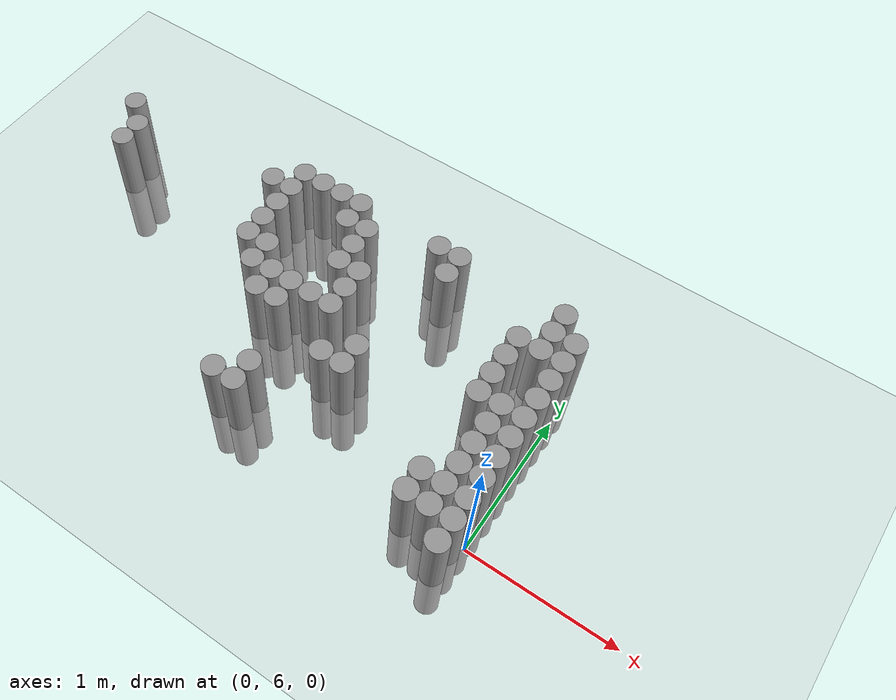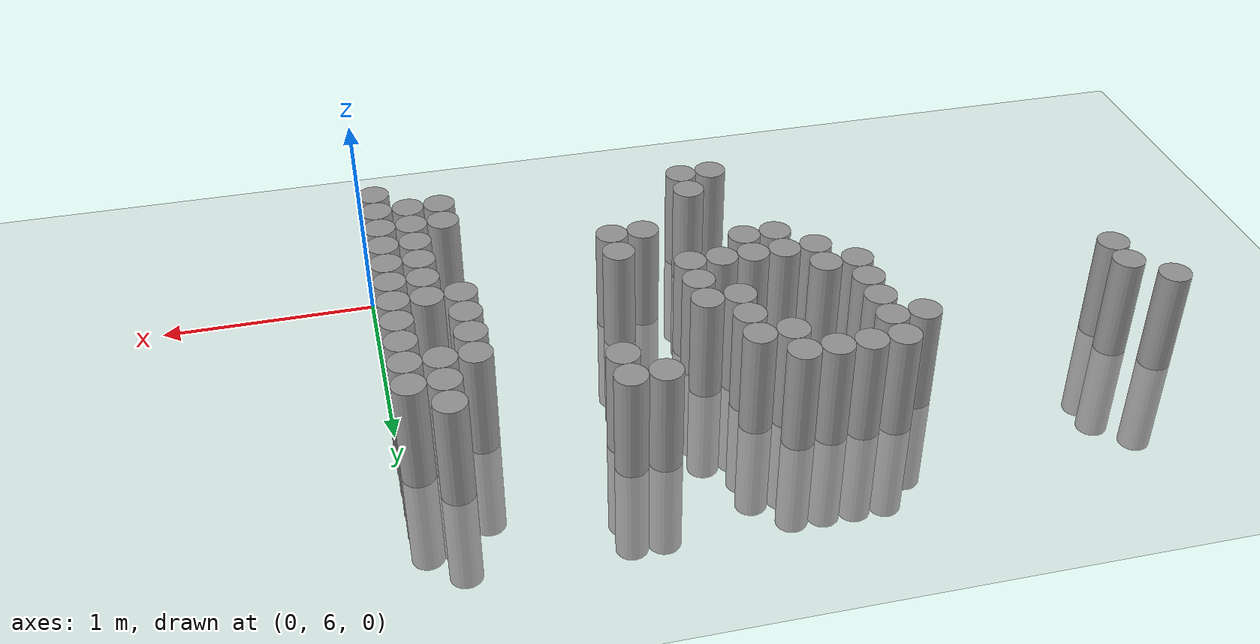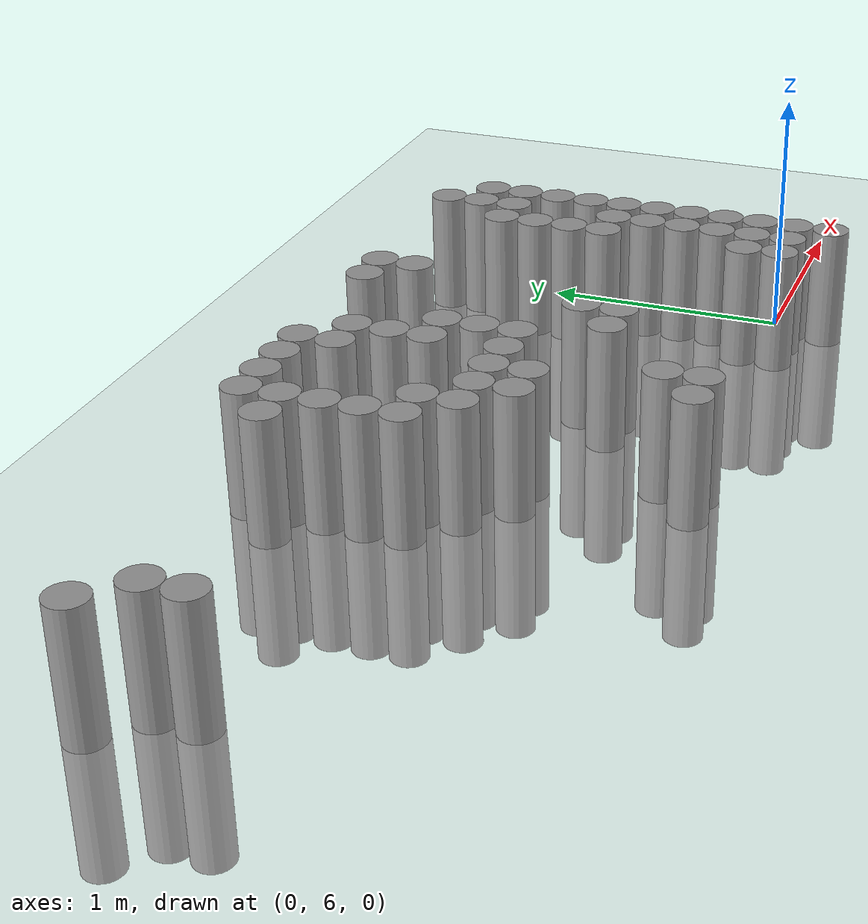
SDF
<sdf version="1.6">
 <world name="default">
  <model name="ground_plane">
   <static>1</static>
   <link name="link">
    <collision name="collision">
     <geometry><plane><normal>0 0 1</normal><size>100 100</size></plane></geometry>
     <surface><friction><ode><mu>100</mu><mu2>50</mu2></ode></friction></surface>
    </collision>
    <visual name="visual">
     <cast_shadows>0</cast_shadows>
     <geometry><plane><normal>0 0 1</normal><size>100 100</size></plane></geometry>
     <material>
      <script><uri>file://media/materials/scripts/gazebo.material</uri><name>Gazebo/Grey</name></script>
     </material>
    </visual>
   </link>
  </model>
  <model name="unit_cylinder_168">
   <pose>-3.525000 7.275000 0.000000 0.000000 0.000000 0.000000</pose>
   <link name="link">
    <inertial>
     <mass>1</mass>
     <inertia><ixx>0.145833</ixx><ixy>0</ixy><ixz>0</ixz><iyy>0.145833</iyy><iyz>0</iyz><izz>0.125</izz></inertia>
    </inertial>
    <collision name="collision">
     <geometry><cylinder><radius>0.075000</radius><length>1</length></cylinder></geometry>
    </collision>
    <visual name="visual">
     <geometry><cylinder><radius>0.075000</radius><length>1</length></cylinder></geometry>
     <material>
      <script><name>Gazebo/Grey</name><uri>file://media/materials/scripts/gazebo.material</uri></script>
     </material>
    </visual>
   </link>
  </model>
  <model name="unit_cylinder_174">
   <pose>-3.375000 6.975000 0.000000 0.000000 0.000000 0.000000</pose>
   <link name="link">
    <inertial>
     <mass>1</mass>
     <inertia><ixx>0.145833</ixx><ixy>0</ixy><ixz>0</ixz><iyy>0.145833</iyy><iyz>0</iyz><izz>0.125</izz></inertia>
    </inertial>
    <collision name="collision">
     <geometry><cylinder><radius>0.075000</radius><length>1</length></cylinder></geometry>
    </collision>
    <visual name="visual">
     <geometry><cylinder><radius>0.075000</radius><length>1</length></cylinder></geometry>
     <material>
      <script><name>Gazebo/Grey</name><uri>file://media/materials/scripts/gazebo.material</uri></script>
     </material>
    </visual>
   </link>
  </model>
  <model name="unit_cylinder_175">
   <pose>-3.375000 7.125000 0.000000 0.000000 0.000000 0.000000</pose>
   <link name="link">
    <inertial>
     <mass>1</mass>
     <inertia><ixx>0.145833</ixx><ixy>0</ixy><ixz>0</ixz><iyy>0.145833</iyy><iyz>0</iyz><izz>0.125</izz></inertia>
    </inertial>
    <collision name="collision">
     <geometry><cylinder><radius>0.075000</radius><length>1</length></cylinder></geometry>
    </collision>
    <visual name="visual">
     <geometry><cylinder><radius>0.075000</radius><length>1</length></cylinder></geometry>
     <material>
      <script><name>Gazebo/Grey</name><uri>file://media/materials/scripts/gazebo.material</uri></script>
     </material>
    </visual>
   </link>
  </model>
  <model name="unit_cylinder_182">
   <pose>-2.325000 7.275000 0.000000 0.000000 0.000000 0.000000</pose>
   <link name="link">
    <inertial>
     <mass>1</mass>
     <inertia><ixx>0.145833</ixx><ixy>0</ixy><ixz>0</ixz><iyy>0.145833</iyy><iyz>0</iyz><izz>0.125</izz></inertia>
    </inertial>
    <collision name="collision">
     <geometry><cylinder><radius>0.075000</radius><length>1</length></cylinder></geometry>
    </collision>
    <visual name="visual">
     <geometry><cylinder><radius>0.075000</radius><length>1</length></cylinder></geometry>
     <material>
      <script><name>Gazebo/Grey</name><uri>file://media/materials/scripts/gazebo.material</uri></script>
     </material>
    </visual>
   </link>
  </model>
  <model name="unit_cylinder_184">
   <pose>-2.175000 6.825000 0.000000 0.000000 0.000000 0.000000</pose>
   <link name="link">
    <inertial>
     <mass>1</mass>
     <inertia><ixx>0.145833</ixx><ixy>0</ixy><ixz>0</ixz><iyy>0.145833</iyy><iyz>0</iyz><izz>0.125</izz></inertia>
    </inertial>
    <collision name="collision">
     <geometry><cylinder><radius>0.075000</radius><length>1</length></cylinder></geometry>
    </collision>
    <visual name="visual">
     <geometry><cylinder><radius>0.075000</radius><length>1</length></cylinder></geometry>
     <material>
      <script><name>Gazebo/Grey</name><uri>file://media/materials/scripts/gazebo.material</uri></script>
     </material>
    </visual>
   </link>
  </model>
  <model name="unit_cylinder_185">
   <pose>-2.175000 6.975000 0.000000 0.000000 0.000000 0.000000</pose>
   <link name="link">
    <inertial>
     <mass>1</mass>
     <inertia><ixx>0.145833</ixx><ixy>0</ixy><ixz>0</ixz><iyy>0.145833</iyy><iyz>0</iyz><izz>0.125</izz></inertia>
    </inertial>
    <collision name="collision">
     <geometry><cylinder><radius>0.075000</radius><length>1</length></cylinder></geometry>
    </collision>
    <visual name="visual">
     <geometry><cylinder><radius>0.075000</radius><length>1</length></cylinder></geometry>
     <material>
      <script><name>Gazebo/Grey</name><uri>file://media/materials/scripts/gazebo.material</uri></script>
     </material>
    </visual>
   </link>
  </model>
  <model name="unit_cylinder_186">
   <pose>-2.175000 7.125000 0.000000 0.000000 0.000000 0.000000</pose>
   <link name="link">
    <inertial>
     <mass>1</mass>
     <inertia><ixx>0.145833</ixx><ixy>0</ixy><ixz>0</ixz><iyy>0.145833</iyy><iyz>0</iyz><izz>0.125</izz></inertia>
    </inertial>
    <collision name="collision">
     <geometry><cylinder><radius>0.075000</radius><length>1</length></cylinder></geometry>
    </collision>
    <visual name="visual">
     <geometry><cylinder><radius>0.075000</radius><length>1</length></cylinder></geometry>
     <material>
      <script><name>Gazebo/Grey</name><uri>file://media/materials/scripts/gazebo.material</uri></script>
     </material>
    </visual>
   </link>
  </model>
  <model name="unit_cylinder_187">
   <pose>-2.175000 7.275000 0.000000 0.000000 0.000000 0.000000</pose>
   <link name="link">
    <inertial>
     <mass>1</mass>
     <inertia><ixx>0.145833</ixx><ixy>0</ixy><ixz>0</ixz><iyy>0.145833</iyy><iyz>0</iyz><izz>0.125</izz></inertia>
    </inertial>
    <collision name="collision">
     <geometry><cylinder><radius>0.075000</radius><length>1</length></cylinder></geometry>
    </collision>
    <visual name="visual">
     <geometry><cylinder><radius>0.075000</radius><length>1</length></cylinder></geometry>
     <material>
      <script><name>Gazebo/Grey</name><uri>file://media/materials/scripts/gazebo.material</uri></script>
     </material>
    </visual>
   </link>
  </model>
  <model name="unit_cylinder_188">
   <pose>-2.175000 7.425000 0.000000 0.000000 0.000000 0.000000</pose>
   <link name="link">
    <inertial>
     <mass>1</mass>
     <inertia><ixx>0.145833</ixx><ixy>0</ixy><ixz>0</ixz><iyy>0.145833</iyy><iyz>0</iyz><izz>0.125</izz></inertia>
    </inertial>
    <collision name="collision">
     <geometry><cylinder><radius>0.075000</radius><length>1</length></cylinder></geometry>
    </collision>
    <visual name="visual">
     <geometry><cylinder><radius>0.075000</radius><length>1</length></cylinder></geometry>
     <material>
      <script><name>Gazebo/Grey</name><uri>file://media/materials/scripts/gazebo.material</uri></script>
     </material>
    </visual>
   </link>
  </model>
  <model name="unit_cylinder_193">
   <pose>-2.025000 6.675000 0.000000 0.000000 0.000000 0.000000</pose>
   <link name="link">
    <inertial>
     <mass>1</mass>
     <inertia><ixx>0.145833</ixx><ixy>0</ixy><ixz>0</ixz><iyy>0.145833</iyy><iyz>0</iyz><izz>0.125</izz></inertia>
    </inertial>
    <collision name="collision">
     <geometry><cylinder><radius>0.075000</radius><length>1</length></cylinder></geometry>
    </collision>
    <visual name="visual">
     <geometry><cylinder><radius>0.075000</radius><length>1</length></cylinder></geometry>
     <material>
      <script><name>Gazebo/Grey</name><uri>file://media/materials/scripts/gazebo.material</uri></script>
     </material>
    </visual>
   </link>
  </model>
  <model name="unit_cylinder_194">
   <pose>-2.025000 6.825000 0.000000 0.000000 0.000000 0.000000</pose>
   <link name="link">
    <inertial>
     <mass>1</mass>
     <inertia><ixx>0.145833</ixx><ixy>0</ixy><ixz>0</ixz><iyy>0.145833</iyy><iyz>0</iyz><izz>0.125</izz></inertia>
    </inertial>
    <collision name="collision">
     <geometry><cylinder><radius>0.075000</radius><length>1</length></cylinder></geometry>
    </collision>
    <visual name="visual">
     <geometry><cylinder><radius>0.075000</radius><length>1</length></cylinder></geometry>
     <material>
      <script><name>Gazebo/Grey</name><uri>file://media/materials/scripts/gazebo.material</uri></script>
     </material>
    </visual>
   </link>
  </model>
  <model name="unit_cylinder_195">
   <pose>-2.025000 7.425000 0.000000 0.000000 0.000000 0.000000</pose>
   <link name="link">
    <inertial>
     <mass>1</mass>
     <inertia><ixx>0.145833</ixx><ixy>0</ixy><ixz>0</ixz><iyy>0.145833</iyy><iyz>0</iyz><izz>0.125</izz></inertia>
    </inertial>
    <collision name="collision">
     <geometry><cylinder><radius>0.075000</radius><length>1</length></cylinder></geometry>
    </collision>
    <visual name="visual">
     <geometry><cylinder><radius>0.075000</radius><length>1</length></cylinder></geometry>
     <material>
      <script><name>Gazebo/Grey</name><uri>file://media/materials/scripts/gazebo.material</uri></script>
     </material>
    </visual>
   </link>
  </model>
  <model name="unit_cylinder_198">
   <pose>-1.875000 6.525000 0.000000 0.000000 0.000000 0.000000</pose>
   <link name="link">
    <inertial>
     <mass>1</mass>
     <inertia><ixx>0.145833</ixx><ixy>0</ixy><ixz>0</ixz><iyy>0.145833</iyy><iyz>0</iyz><izz>0.125</izz></inertia>
    </inertial>
    <collision name="collision">
     <geometry><cylinder><radius>0.075000</radius><length>1</length></cylinder></geometry>
    </collision>
    <visual name="visual">
     <geometry><cylinder><radius>0.075000</radius><length>1</length></cylinder></geometry>
     <material>
      <script><name>Gazebo/Grey</name><uri>file://media/materials/scripts/gazebo.material</uri></script>
     </material>
    </visual>
   </link>
  </model>
  <model name="unit_cylinder_199">
   <pose>-1.875000 6.675000 0.000000 0.000000 0.000000 0.000000</pose>
   <link name="link">
    <inertial>
     <mass>1</mass>
     <inertia><ixx>0.145833</ixx><ixy>0</ixy><ixz>0</ixz><iyy>0.145833</iyy><iyz>0</iyz><izz>0.125</izz></inertia>
    </inertial>
    <collision name="collision">
     <geometry><cylinder><radius>0.075000</radius><length>1</length></cylinder></geometry>
    </collision>
    <visual name="visual">
     <geometry><cylinder><radius>0.075000</radius><length>1</length></cylinder></geometry>
     <material>
      <script><name>Gazebo/Grey</name><uri>file://media/materials/scripts/gazebo.material</uri></script>
     </material>
    </visual>
   </link>
  </model>
  <model name="unit_cylinder_200">
   <pose>-1.875000 7.425000 0.000000 0.000000 0.000000 0.000000</pose>
   <link name="link">
    <inertial>
     <mass>1</mass>
     <inertia><ixx>0.145833</ixx><ixy>0</ixy><ixz>0</ixz><iyy>0.145833</iyy><iyz>0</iyz><izz>0.125</izz></inertia>
    </inertial>
    <collision name="collision">
     <geometry><cylinder><radius>0.075000</radius><length>1</length></cylinder></geometry>
    </collision>
    <visual name="visual">
     <geometry><cylinder><radius>0.075000</radius><length>1</length></cylinder></geometry>
     <material>
      <script><name>Gazebo/Grey</name><uri>file://media/materials/scripts/gazebo.material</uri></script>
     </material>
    </visual>
   </link>
  </model>
  <model name="unit_cylinder_204">
   <pose>-1.725000 5.925000 0.000000 0.000000 0.000000 0.000000</pose>
   <link name="link">
    <inertial>
     <mass>1</mass>
     <inertia><ixx>0.145833</ixx><ixy>0</ixy><ixz>0</ixz><iyy>0.145833</iyy><iyz>0</iyz><izz>0.125</izz></inertia>
    </inertial>
    <collision name="collision">
     <geometry><cylinder><radius>0.075000</radius><length>1</length></cylinder></geometry>
    </collision>
    <visual name="visual">
     <geometry><cylinder><radius>0.075000</radius><length>1</length></cylinder></geometry>
     <material>
      <script><name>Gazebo/Grey</name><uri>file://media/materials/scripts/gazebo.material</uri></script>
     </material>
    </visual>
   </link>
  </model>
  <model name="unit_cylinder_205">
   <pose>-1.725000 6.525000 0.000000 0.000000 0.000000 0.000000</pose>
   <link name="link">
    <inertial>
     <mass>1</mass>
     <inertia><ixx>0.145833</ixx><ixy>0</ixy><ixz>0</ixz><iyy>0.145833</iyy><iyz>0</iyz><izz>0.125</izz></inertia>
    </inertial>
    <collision name="collision">
     <geometry><cylinder><radius>0.075000</radius><length>1</length></cylinder></geometry>
    </collision>
    <visual name="visual">
     <geometry><cylinder><radius>0.075000</radius><length>1</length></cylinder></geometry>
     <material>
      <script><name>Gazebo/Grey</name><uri>file://media/materials/scripts/gazebo.material</uri></script>
     </material>
    </visual>
   </link>
  </model>
  <model name="unit_cylinder_206">
   <pose>-1.725000 6.675000 0.000000 0.000000 0.000000 0.000000</pose>
   <link name="link">
    <inertial>
     <mass>1</mass>
     <inertia><ixx>0.145833</ixx><ixy>0</ixy><ixz>0</ixz><iyy>0.145833</iyy><iyz>0</iyz><izz>0.125</izz></inertia>
    </inertial>
    <collision name="collision">
     <geometry><cylinder><radius>0.075000</radius><length>1</length></cylinder></geometry>
    </collision>
    <visual name="visual">
     <geometry><cylinder><radius>0.075000</radius><length>1</length></cylinder></geometry>
     <material>
      <script><name>Gazebo/Grey</name><uri>file://media/materials/scripts/gazebo.material</uri></script>
     </material>
    </visual>
   </link>
  </model>
  <model name="unit_cylinder_207">
   <pose>-1.725000 7.275000 0.000000 0.000000 0.000000 0.000000</pose>
   <link name="link">
    <inertial>
     <mass>1</mass>
     <inertia><ixx>0.145833</ixx><ixy>0</ixy><ixz>0</ixz><iyy>0.145833</iyy><iyz>0</iyz><izz>0.125</izz></inertia>
    </inertial>
    <collision name="collision">
     <geometry><cylinder><radius>0.075000</radius><length>1</length></cylinder></geometry>
    </collision>
    <visual name="visual">
     <geometry><cylinder><radius>0.075000</radius><length>1</length></cylinder></geometry>
     <material>
      <script><name>Gazebo/Grey</name><uri>file://media/materials/scripts/gazebo.material</uri></script>
     </material>
    </visual>
   </link>
  </model>
  <model name="unit_cylinder_208">
   <pose>-1.725000 7.425000 0.000000 0.000000 0.000000 0.000000</pose>
   <link name="link">
    <inertial>
     <mass>1</mass>
     <inertia><ixx>0.145833</ixx><ixy>0</ixy><ixz>0</ixz><iyy>0.145833</iyy><iyz>0</iyz><izz>0.125</izz></inertia>
    </inertial>
    <collision name="collision">
     <geometry><cylinder><radius>0.075000</radius><length>1</length></cylinder></geometry>
    </collision>
    <visual name="visual">
     <geometry><cylinder><radius>0.075000</radius><length>1</length></cylinder></geometry>
     <material>
      <script><name>Gazebo/Grey</name><uri>file://media/materials/scripts/gazebo.material</uri></script>
     </material>
    </visual>
   </link>
  </model>
  <model name="unit_cylinder_215">
   <pose>-1.575000 5.925000 0.000000 0.000000 0.000000 0.000000</pose>
   <link name="link">
    <inertial>
     <mass>1</mass>
     <inertia><ixx>0.145833</ixx><ixy>0</ixy><ixz>0</ixz><iyy>0.145833</iyy><iyz>0</iyz><izz>0.125</izz></inertia>
    </inertial>
    <collision name="collision">
     <geometry><cylinder><radius>0.075000</radius><length>1</length></cylinder></geometry>
    </collision>
    <visual name="visual">
     <geometry><cylinder><radius>0.075000</radius><length>1</length></cylinder></geometry>
     <material>
      <script><name>Gazebo/Grey</name><uri>file://media/materials/scripts/gazebo.material</uri></script>
     </material>
    </visual>
   </link>
  </model>
  <model name="unit_cylinder_216">
   <pose>-1.575000 6.075000 0.000000 0.000000 0.000000 0.000000</pose>
   <link name="link">
    <inertial>
     <mass>1</mass>
     <inertia><ixx>0.145833</ixx><ixy>0</ixy><ixz>0</ixz><iyy>0.145833</iyy><iyz>0</iyz><izz>0.125</izz></inertia>
    </inertial>
    <collision name="collision">
     <geometry><cylinder><radius>0.075000</radius><length>1</length></cylinder></geometry>
    </collision>
    <visual name="visual">
     <geometry><cylinder><radius>0.075000</radius><length>1</length></cylinder></geometry>
     <material>
      <script><name>Gazebo/Grey</name><uri>file://media/materials/scripts/gazebo.material</uri></script>
     </material>
    </visual>
   </link>
  </model>
  <model name="unit_cylinder_217">
   <pose>-1.575000 6.675000 0.000000 0.000000 0.000000 0.000000</pose>
   <link name="link">
    <inertial>
     <mass>1</mass>
     <inertia><ixx>0.145833</ixx><ixy>0</ixy><ixz>0</ixz><iyy>0.145833</iyy><iyz>0</iyz><izz>0.125</izz></inertia>
    </inertial>
    <collision name="collision">
     <geometry><cylinder><radius>0.075000</radius><length>1</length></cylinder></geometry>
    </collision>
    <visual name="visual">
     <geometry><cylinder><radius>0.075000</radius><length>1</length></cylinder></geometry>
     <material>
      <script><name>Gazebo/Grey</name><uri>file://media/materials/scripts/gazebo.material</uri></script>
     </material>
    </visual>
   </link>
  </model>
  <model name="unit_cylinder_218">
   <pose>-1.575000 6.975000 0.000000 0.000000 0.000000 0.000000</pose>
   <link name="link">
    <inertial>
     <mass>1</mass>
     <inertia><ixx>0.145833</ixx><ixy>0</ixy><ixz>0</ixz><iyy>0.145833</iyy><iyz>0</iyz><izz>0.125</izz></inertia>
    </inertial>
    <collision name="collision">
     <geometry><cylinder><radius>0.075000</radius><length>1</length></cylinder></geometry>
    </collision>
    <visual name="visual">
     <geometry><cylinder><radius>0.075000</radius><length>1</length></cylinder></geometry>
     <material>
      <script><name>Gazebo/Grey</name><uri>file://media/materials/scripts/gazebo.material</uri></script>
     </material>
    </visual>
   </link>
  </model>
  <model name="unit_cylinder_219">
   <pose>-1.575000 7.125000 0.000000 0.000000 0.000000 0.000000</pose>
   <link name="link">
    <inertial>
     <mass>1</mass>
     <inertia><ixx>0.145833</ixx><ixy>0</ixy><ixz>0</ixz><iyy>0.145833</iyy><iyz>0</iyz><izz>0.125</izz></inertia>
    </inertial>
    <collision name="collision">
     <geometry><cylinder><radius>0.075000</radius><length>1</length></cylinder></geometry>
    </collision>
    <visual name="visual">
     <geometry><cylinder><radius>0.075000</radius><length>1</length></cylinder></geometry>
     <material>
      <script><name>Gazebo/Grey</name><uri>file://media/materials/scripts/gazebo.material</uri></script>
     </material>
    </visual>
   </link>
  </model>
  <model name="unit_cylinder_220">
   <pose>-1.575000 7.275000 0.000000 0.000000 0.000000 0.000000</pose>
   <link name="link">
    <inertial>
     <mass>1</mass>
     <inertia><ixx>0.145833</ixx><ixy>0</ixy><ixz>0</ixz><iyy>0.145833</iyy><iyz>0</iyz><izz>0.125</izz></inertia>
    </inertial>
    <collision name="collision">
     <geometry><cylinder><radius>0.075000</radius><length>1</length></cylinder></geometry>
    </collision>
    <visual name="visual">
     <geometry><cylinder><radius>0.075000</radius><length>1</length></cylinder></geometry>
     <material>
      <script><name>Gazebo/Grey</name><uri>file://media/materials/scripts/gazebo.material</uri></script>
     </material>
    </visual>
   </link>
  </model>
  <model name="unit_cylinder_228">
   <pose>-1.425000 6.675000 0.000000 0.000000 0.000000 0.000000</pose>
   <link name="link">
    <inertial>
     <mass>1</mass>
     <inertia><ixx>0.145833</ixx><ixy>0</ixy><ixz>0</ixz><iyy>0.145833</iyy><iyz>0</iyz><izz>0.125</izz></inertia>
    </inertial>
    <collision name="collision">
     <geometry><cylinder><radius>0.075000</radius><length>1</length></cylinder></geometry>
    </collision>
    <visual name="visual">
     <geometry><cylinder><radius>0.075000</radius><length>1</length></cylinder></geometry>
     <material>
      <script><name>Gazebo/Grey</name><uri>file://media/materials/scripts/gazebo.material</uri></script>
     </material>
    </visual>
   </link>
  </model>
  <model name="unit_cylinder_229">
   <pose>-1.425000 6.825000 0.000000 0.000000 0.000000 0.000000</pose>
   <link name="link">
    <inertial>
     <mass>1</mass>
     <inertia><ixx>0.145833</ixx><ixy>0</ixy><ixz>0</ixz><iyy>0.145833</iyy><iyz>0</iyz><izz>0.125</izz></inertia>
    </inertial>
    <collision name="collision">
     <geometry><cylinder><radius>0.075000</radius><length>1</length></cylinder></geometry>
    </collision>
    <visual name="visual">
     <geometry><cylinder><radius>0.075000</radius><length>1</length></cylinder></geometry>
     <material>
      <script><name>Gazebo/Grey</name><uri>file://media/materials/scripts/gazebo.material</uri></script>
     </material>
    </visual>
   </link>
  </model>
  <model name="unit_cylinder_230">
   <pose>-1.425000 6.975000 0.000000 0.000000 0.000000 0.000000</pose>
   <link name="link">
    <inertial>
     <mass>1</mass>
     <inertia><ixx>0.145833</ixx><ixy>0</ixy><ixz>0</ixz><iyy>0.145833</iyy><iyz>0</iyz><izz>0.125</izz></inertia>
    </inertial>
    <collision name="collision">
     <geometry><cylinder><radius>0.075000</radius><length>1</length></cylinder></geometry>
    </collision>
    <visual name="visual">
     <geometry><cylinder><radius>0.075000</radius><length>1</length></cylinder></geometry>
     <material>
      <script><name>Gazebo/Grey</name><uri>file://media/materials/scripts/gazebo.material</uri></script>
     </material>
    </visual>
   </link>
  </model>
  <model name="unit_cylinder_233">
   <pose>-1.275000 6.375000 0.000000 0.000000 0.000000 0.000000</pose>
   <link name="link">
    <inertial>
     <mass>1</mass>
     <inertia><ixx>0.145833</ixx><ixy>0</ixy><ixz>0</ixz><iyy>0.145833</iyy><iyz>0</iyz><izz>0.125</izz></inertia>
    </inertial>
    <collision name="collision">
     <geometry><cylinder><radius>0.075000</radius><length>1</length></cylinder></geometry>
    </collision>
    <visual name="visual">
     <geometry><cylinder><radius>0.075000</radius><length>1</length></cylinder></geometry>
     <material>
      <script><name>Gazebo/Grey</name><uri>file://media/materials/scripts/gazebo.material</uri></script>
     </material>
    </visual>
   </link>
  </model>
  <model name="unit_cylinder_238">
   <pose>-1.125000 6.375000 0.000000 0.000000 0.000000 0.000000</pose>
   <link name="link">
    <inertial>
     <mass>1</mass>
     <inertia><ixx>0.145833</ixx><ixy>0</ixy><ixz>0</ixz><iyy>0.145833</iyy><iyz>0</iyz><izz>0.125</izz></inertia>
    </inertial>
    <collision name="collision">
     <geometry><cylinder><radius>0.075000</radius><length>1</length></cylinder></geometry>
    </collision>
    <visual name="visual">
     <geometry><cylinder><radius>0.075000</radius><length>1</length></cylinder></geometry>
     <material>
      <script><name>Gazebo/Grey</name><uri>file://media/materials/scripts/gazebo.material</uri></script>
     </material>
    </visual>
   </link>
  </model>
  <model name="unit_cylinder_239">
   <pose>-1.125000 6.525000 0.000000 0.000000 0.000000 0.000000</pose>
   <link name="link">
    <inertial>
     <mass>1</mass>
     <inertia><ixx>0.145833</ixx><ixy>0</ixy><ixz>0</ixz><iyy>0.145833</iyy><iyz>0</iyz><izz>0.125</izz></inertia>
    </inertial>
    <collision name="collision">
     <geometry><cylinder><radius>0.075000</radius><length>1</length></cylinder></geometry>
    </collision>
    <visual name="visual">
     <geometry><cylinder><radius>0.075000</radius><length>1</length></cylinder></geometry>
     <material>
      <script><name>Gazebo/Grey</name><uri>file://media/materials/scripts/gazebo.material</uri></script>
     </material>
    </visual>
   </link>
  </model>
  <model name="unit_cylinder_240">
   <pose>-1.125000 7.425000 0.000000 0.000000 0.000000 0.000000</pose>
   <link name="link">
    <inertial>
     <mass>1</mass>
     <inertia><ixx>0.145833</ixx><ixy>0</ixy><ixz>0</ixz><iyy>0.145833</iyy><iyz>0</iyz><izz>0.125</izz></inertia>
    </inertial>
    <collision name="collision">
     <geometry><cylinder><radius>0.075000</radius><length>1</length></cylinder></geometry>
    </collision>
    <visual name="visual">
     <geometry><cylinder><radius>0.075000</radius><length>1</length></cylinder></geometry>
     <material>
      <script><name>Gazebo/Grey</name><uri>file://media/materials/scripts/gazebo.material</uri></script>
     </material>
    </visual>
   </link>
  </model>
  <model name="unit_cylinder_245">
   <pose>-0.975000 7.275000 0.000000 0.000000 0.000000 0.000000</pose>
   <link name="link">
    <inertial>
     <mass>1</mass>
     <inertia><ixx>0.145833</ixx><ixy>0</ixy><ixz>0</ixz><iyy>0.145833</iyy><iyz>0</iyz><izz>0.125</izz></inertia>
    </inertial>
    <collision name="collision">
     <geometry><cylinder><radius>0.075000</radius><length>1</length></cylinder></geometry>
    </collision>
    <visual name="visual">
     <geometry><cylinder><radius>0.075000</radius><length>1</length></cylinder></geometry>
     <material>
      <script><name>Gazebo/Grey</name><uri>file://media/materials/scripts/gazebo.material</uri></script>
     </material>
    </visual>
   </link>
  </model>
  <model name="unit_cylinder_246">
   <pose>-0.975000 7.425000 0.000000 0.000000 0.000000 0.000000</pose>
   <link name="link">
    <inertial>
     <mass>1</mass>
     <inertia><ixx>0.145833</ixx><ixy>0</ixy><ixz>0</ixz><iyy>0.145833</iyy><iyz>0</iyz><izz>0.125</izz></inertia>
    </inertial>
    <collision name="collision">
     <geometry><cylinder><radius>0.075000</radius><length>1</length></cylinder></geometry>
    </collision>
    <visual name="visual">
     <geometry><cylinder><radius>0.075000</radius><length>1</length></cylinder></geometry>
     <material>
      <script><name>Gazebo/Grey</name><uri>file://media/materials/scripts/gazebo.material</uri></script>
     </material>
    </visual>
   </link>
  </model>
  <model name="unit_cylinder_258">
   <pose>-0.375000 5.925000 0.000000 0.000000 0.000000 0.000000</pose>
   <link name="link">
    <inertial>
     <mass>1</mass>
     <inertia><ixx>0.145833</ixx><ixy>0</ixy><ixz>0</ixz><iyy>0.145833</iyy><iyz>0</iyz><izz>0.125</izz></inertia>
    </inertial>
    <collision name="collision">
     <geometry><cylinder><radius>0.075000</radius><length>1</length></cylinder></geometry>
    </collision>
    <visual name="visual">
     <geometry><cylinder><radius>0.075000</radius><length>1</length></cylinder></geometry>
     <material>
      <script><name>Gazebo/Grey</name><uri>file://media/materials/scripts/gazebo.material</uri></script>
     </material>
    </visual>
   </link>
  </model>
  <model name="unit_cylinder_259">
   <pose>-0.375000 6.075000 0.000000 0.000000 0.000000 0.000000</pose>
   <link name="link">
    <inertial>
     <mass>1</mass>
     <inertia><ixx>0.145833</ixx><ixy>0</ixy><ixz>0</ixz><iyy>0.145833</iyy><iyz>0</iyz><izz>0.125</izz></inertia>
    </inertial>
    <collision name="collision">
     <geometry><cylinder><radius>0.075000</radius><length>1</length></cylinder></geometry>
    </collision>
    <visual name="visual">
     <geometry><cylinder><radius>0.075000</radius><length>1</length></cylinder></geometry>
     <material>
      <script><name>Gazebo/Grey</name><uri>file://media/materials/scripts/gazebo.material</uri></script>
     </material>
    </visual>
   </link>
  </model>
  <model name="unit_cylinder_260">
   <pose>-0.375000 6.675000 0.000000 0.000000 0.000000 0.000000</pose>
   <link name="link">
    <inertial>
     <mass>1</mass>
     <inertia><ixx>0.145833</ixx><ixy>0</ixy><ixz>0</ixz><iyy>0.145833</iyy><iyz>0</iyz><izz>0.125</izz></inertia>
    </inertial>
    <collision name="collision">
     <geometry><cylinder><radius>0.075000</radius><length>1</length></cylinder></geometry>
    </collision>
    <visual name="visual">
     <geometry><cylinder><radius>0.075000</radius><length>1</length></cylinder></geometry>
     <material>
      <script><name>Gazebo/Grey</name><uri>file://media/materials/scripts/gazebo.material</uri></script>
     </material>
    </visual>
   </link>
  </model>
  <model name="unit_cylinder_261">
   <pose>-0.375000 6.825000 0.000000 0.000000 0.000000 0.000000</pose>
   <link name="link">
    <inertial>
     <mass>1</mass>
     <inertia><ixx>0.145833</ixx><ixy>0</ixy><ixz>0</ixz><iyy>0.145833</iyy><iyz>0</iyz><izz>0.125</izz></inertia>
    </inertial>
    <collision name="collision">
     <geometry><cylinder><radius>0.075000</radius><length>1</length></cylinder></geometry>
    </collision>
    <visual name="visual">
     <geometry><cylinder><radius>0.075000</radius><length>1</length></cylinder></geometry>
     <material>
      <script><name>Gazebo/Grey</name><uri>file://media/materials/scripts/gazebo.material</uri></script>
     </material>
    </visual>
   </link>
  </model>
  <model name="unit_cylinder_262">
   <pose>-0.375000 6.975000 0.000000 0.000000 0.000000 0.000000</pose>
   <link name="link">
    <inertial>
     <mass>1</mass>
     <inertia><ixx>0.145833</ixx><ixy>0</ixy><ixz>0</ixz><iyy>0.145833</iyy><iyz>0</iyz><izz>0.125</izz></inertia>
    </inertial>
    <collision name="collision">
     <geometry><cylinder><radius>0.075000</radius><length>1</length></cylinder></geometry>
    </collision>
    <visual name="visual">
     <geometry><cylinder><radius>0.075000</radius><length>1</length></cylinder></geometry>
     <material>
      <script><name>Gazebo/Grey</name><uri>file://media/materials/scripts/gazebo.material</uri></script>
     </material>
    </visual>
   </link>
  </model>
  <model name="unit_cylinder_263">
   <pose>-0.375000 7.125000 0.000000 0.000000 0.000000 0.000000</pose>
   <link name="link">
    <inertial>
     <mass>1</mass>
     <inertia><ixx>0.145833</ixx><ixy>0</ixy><ixz>0</ixz><iyy>0.145833</iyy><iyz>0</iyz><izz>0.125</izz></inertia>
    </inertial>
    <collision name="collision">
     <geometry><cylinder><radius>0.075000</radius><length>1</length></cylinder></geometry>
    </collision>
    <visual name="visual">
     <geometry><cylinder><radius>0.075000</radius><length>1</length></cylinder></geometry>
     <material>
      <script><name>Gazebo/Grey</name><uri>file://media/materials/scripts/gazebo.material</uri></script>
     </material>
    </visual>
   </link>
  </model>
  <model name="unit_cylinder_265">
   <pose>-0.225000 5.925000 0.000000 0.000000 0.000000 0.000000</pose>
   <link name="link">
    <inertial>
     <mass>1</mass>
     <inertia><ixx>0.145833</ixx><ixy>0</ixy><ixz>0</ixz><iyy>0.145833</iyy><iyz>0</iyz><izz>0.125</izz></inertia>
    </inertial>
    <collision name="collision">
     <geometry><cylinder><radius>0.075000</radius><length>1</length></cylinder></geometry>
    </collision>
    <visual name="visual">
     <geometry><cylinder><radius>0.075000</radius><length>1</length></cylinder></geometry>
     <material>
      <script><name>Gazebo/Grey</name><uri>file://media/materials/scripts/gazebo.material</uri></script>
     </material>
    </visual>
   </link>
  </model>
  <model name="unit_cylinder_266">
   <pose>-0.225000 6.075000 0.000000 0.000000 0.000000 0.000000</pose>
   <link name="link">
    <inertial>
     <mass>1</mass>
     <inertia><ixx>0.145833</ixx><ixy>0</ixy><ixz>0</ixz><iyy>0.145833</iyy><iyz>0</iyz><izz>0.125</izz></inertia>
    </inertial>
    <collision name="collision">
     <geometry><cylinder><radius>0.075000</radius><length>1</length></cylinder></geometry>
    </collision>
    <visual name="visual">
     <geometry><cylinder><radius>0.075000</radius><length>1</length></cylinder></geometry>
     <material>
      <script><name>Gazebo/Grey</name><uri>file://media/materials/scripts/gazebo.material</uri></script>
     </material>
    </visual>
   </link>
  </model>
  <model name="unit_cylinder_267">
   <pose>-0.225000 6.225000 0.000000 0.000000 0.000000 0.000000</pose>
   <link name="link">
    <inertial>
     <mass>1</mass>
     <inertia><ixx>0.145833</ixx><ixy>0</ixy><ixz>0</ixz><iyy>0.145833</iyy><iyz>0</iyz><izz>0.125</izz></inertia>
    </inertial>
    <collision name="collision">
     <geometry><cylinder><radius>0.075000</radius><length>1</length></cylinder></geometry>
    </collision>
    <visual name="visual">
     <geometry><cylinder><radius>0.075000</radius><length>1</length></cylinder></geometry>
     <material>
      <script><name>Gazebo/Grey</name><uri>file://media/materials/scripts/gazebo.material</uri></script>
     </material>
    </visual>
   </link>
  </model>
  <model name="unit_cylinder_268">
   <pose>-0.225000 6.375000 0.000000 0.000000 0.000000 0.000000</pose>
   <link name="link">
    <inertial>
     <mass>1</mass>
     <inertia><ixx>0.145833</ixx><ixy>0</ixy><ixz>0</ixz><iyy>0.145833</iyy><iyz>0</iyz><izz>0.125</izz></inertia>
    </inertial>
    <collision name="collision">
     <geometry><cylinder><radius>0.075000</radius><length>1</length></cylinder></geometry>
    </collision>
    <visual name="visual">
     <geometry><cylinder><radius>0.075000</radius><length>1</length></cylinder></geometry>
     <material>
      <script><name>Gazebo/Grey</name><uri>file://media/materials/scripts/gazebo.material</uri></script>
     </material>
    </visual>
   </link>
  </model>
  <model name="unit_cylinder_269">
   <pose>-0.225000 6.525000 0.000000 0.000000 0.000000 0.000000</pose>
   <link name="link">
    <inertial>
     <mass>1</mass>
     <inertia><ixx>0.145833</ixx><ixy>0</ixy><ixz>0</ixz><iyy>0.145833</iyy><iyz>0</iyz><izz>0.125</izz></inertia>
    </inertial>
    <collision name="collision">
     <geometry><cylinder><radius>0.075000</radius><length>1</length></cylinder></geometry>
    </collision>
    <visual name="visual">
     <geometry><cylinder><radius>0.075000</radius><length>1</length></cylinder></geometry>
     <material>
      <script><name>Gazebo/Grey</name><uri>file://media/materials/scripts/gazebo.material</uri></script>
     </material>
    </visual>
   </link>
  </model>
  <model name="unit_cylinder_270">
   <pose>-0.225000 6.675000 0.000000 0.000000 0.000000 0.000000</pose>
   <link name="link">
    <inertial>
     <mass>1</mass>
     <inertia><ixx>0.145833</ixx><ixy>0</ixy><ixz>0</ixz><iyy>0.145833</iyy><iyz>0</iyz><izz>0.125</izz></inertia>
    </inertial>
    <collision name="collision">
     <geometry><cylinder><radius>0.075000</radius><length>1</length></cylinder></geometry>
    </collision>
    <visual name="visual">
     <geometry><cylinder><radius>0.075000</radius><length>1</length></cylinder></geometry>
     <material>
      <script><name>Gazebo/Grey</name><uri>file://media/materials/scripts/gazebo.material</uri></script>
     </material>
    </visual>
   </link>
  </model>
  <model name="unit_cylinder_271">
   <pose>-0.225000 7.125000 0.000000 0.000000 0.000000 0.000000</pose>
   <link name="link">
    <inertial>
     <mass>1</mass>
     <inertia><ixx>0.145833</ixx><ixy>0</ixy><ixz>0</ixz><iyy>0.145833</iyy><iyz>0</iyz><izz>0.125</izz></inertia>
    </inertial>
    <collision name="collision">
     <geometry><cylinder><radius>0.075000</radius><length>1</length></cylinder></geometry>
    </collision>
    <visual name="visual">
     <geometry><cylinder><radius>0.075000</radius><length>1</length></cylinder></geometry>
     <material>
      <script><name>Gazebo/Grey</name><uri>file://media/materials/scripts/gazebo.material</uri></script>
     </material>
    </visual>
   </link>
  </model>
  <model name="unit_cylinder_272">
   <pose>-0.225000 7.275000 0.000000 0.000000 0.000000 0.000000</pose>
   <link name="link">
    <inertial>
     <mass>1</mass>
     <inertia><ixx>0.145833</ixx><ixy>0</ixy><ixz>0</ixz><iyy>0.145833</iyy><iyz>0</iyz><izz>0.125</izz></inertia>
    </inertial>
    <collision name="collision">
     <geometry><cylinder><radius>0.075000</radius><length>1</length></cylinder></geometry>
    </collision>
    <visual name="visual">
     <geometry><cylinder><radius>0.075000</radius><length>1</length></cylinder></geometry>
     <material>
      <script><name>Gazebo/Grey</name><uri>file://media/materials/scripts/gazebo.material</uri></script>
     </material>
    </visual>
   </link>
  </model>
  <model name="unit_cylinder_273">
   <pose>-0.225000 7.425000 0.000000 0.000000 0.000000 0.000000</pose>
   <link name="link">
    <inertial>
     <mass>1</mass>
     <inertia><ixx>0.145833</ixx><ixy>0</ixy><ixz>0</ixz><iyy>0.145833</iyy><iyz>0</iyz><izz>0.125</izz></inertia>
    </inertial>
    <collision name="collision">
     <geometry><cylinder><radius>0.075000</radius><length>1</length></cylinder></geometry>
    </collision>
    <visual name="visual">
     <geometry><cylinder><radius>0.075000</radius><length>1</length></cylinder></geometry>
     <material>
      <script><name>Gazebo/Grey</name><uri>file://media/materials/scripts/gazebo.material</uri></script>
     </material>
    </visual>
   </link>
  </model>
  <model name="unit_cylinder_283">
   <pose>-0.075000 5.775000 0.000000 0.000000 0.000000 0.000000</pose>
   <link name="link">
    <inertial>
     <mass>1</mass>
     <inertia><ixx>0.145833</ixx><ixy>0</ixy><ixz>0</ixz><iyy>0.145833</iyy><iyz>0</iyz><izz>0.125</izz></inertia>
    </inertial>
    <collision name="collision">
     <geometry><cylinder><radius>0.075000</radius><length>1</length></cylinder></geometry>
    </collision>
    <visual name="visual">
     <geometry><cylinder><radius>0.075000</radius><length>1</length></cylinder></geometry>
     <material>
      <script><name>Gazebo/Grey</name><uri>file://media/materials/scripts/gazebo.material</uri></script>
     </material>
    </visual>
   </link>
  </model>
  <model name="unit_cylinder_284">
   <pose>-0.075000 5.925000 0.000000 0.000000 0.000000 0.000000</pose>
   <link name="link">
    <inertial>
     <mass>1</mass>
     <inertia><ixx>0.145833</ixx><ixy>0</ixy><ixz>0</ixz><iyy>0.145833</iyy><iyz>0</iyz><izz>0.125</izz></inertia>
    </inertial>
    <collision name="collision">
     <geometry><cylinder><radius>0.075000</radius><length>1</length></cylinder></geometry>
    </collision>
    <visual name="visual">
     <geometry><cylinder><radius>0.075000</radius><length>1</length></cylinder></geometry>
     <material>
      <script><name>Gazebo/Grey</name><uri>file://media/materials/scripts/gazebo.material</uri></script>
     </material>
    </visual>
   </link>
  </model>
  <model name="unit_cylinder_285">
   <pose>-0.075000 6.075000 0.000000 0.000000 0.000000 0.000000</pose>
   <link name="link">
    <inertial>
     <mass>1</mass>
     <inertia><ixx>0.145833</ixx><ixy>0</ixy><ixz>0</ixz><iyy>0.145833</iyy><iyz>0</iyz><izz>0.125</izz></inertia>
    </inertial>
    <collision name="collision">
     <geometry><cylinder><radius>0.075000</radius><length>1</length></cylinder></geometry>
    </collision>
    <visual name="visual">
     <geometry><cylinder><radius>0.075000</radius><length>1</length></cylinder></geometry>
     <material>
      <script><name>Gazebo/Grey</name><uri>file://media/materials/scripts/gazebo.material</uri></script>
     </material>
    </visual>
   </link>
  </model>
  <model name="unit_cylinder_286">
   <pose>-0.075000 6.225000 0.000000 0.000000 0.000000 0.000000</pose>
   <link name="link">
    <inertial>
     <mass>1</mass>
     <inertia><ixx>0.145833</ixx><ixy>0</ixy><ixz>0</ixz><iyy>0.145833</iyy><iyz>0</iyz><izz>0.125</izz></inertia>
    </inertial>
    <collision name="collision">
     <geometry><cylinder><radius>0.075000</radius><length>1</length></cylinder></geometry>
    </collision>
    <visual name="visual">
     <geometry><cylinder><radius>0.075000</radius><length>1</length></cylinder></geometry>
     <material>
      <script><name>Gazebo/Grey</name><uri>file://media/materials/scripts/gazebo.material</uri></script>
     </material>
    </visual>
   </link>
  </model>
  <model name="unit_cylinder_287">
   <pose>-0.075000 6.375000 0.000000 0.000000 0.000000 0.000000</pose>
   <link name="link">
    <inertial>
     <mass>1</mass>
     <inertia><ixx>0.145833</ixx><ixy>0</ixy><ixz>0</ixz><iyy>0.145833</iyy><iyz>0</iyz><izz>0.125</izz></inertia>
    </inertial>
    <collision name="collision">
     <geometry><cylinder><radius>0.075000</radius><length>1</length></cylinder></geometry>
    </collision>
    <visual name="visual">
     <geometry><cylinder><radius>0.075000</radius><length>1</length></cylinder></geometry>
     <material>
      <script><name>Gazebo/Grey</name><uri>file://media/materials/scripts/gazebo.material</uri></script>
     </material>
    </visual>
   </link>
  </model>
  <model name="unit_cylinder_288">
   <pose>-0.075000 6.525000 0.000000 0.000000 0.000000 0.000000</pose>
   <link name="link">
    <inertial>
     <mass>1</mass>
     <inertia><ixx>0.145833</ixx><ixy>0</ixy><ixz>0</ixz><iyy>0.145833</iyy><iyz>0</iyz><izz>0.125</izz></inertia>
    </inertial>
    <collision name="collision">
     <geometry><cylinder><radius>0.075000</radius><length>1</length></cylinder></geometry>
    </collision>
    <visual name="visual">
     <geometry><cylinder><radius>0.075000</radius><length>1</length></cylinder></geometry>
     <material>
      <script><name>Gazebo/Grey</name><uri>file://media/materials/scripts/gazebo.material</uri></script>
     </material>
    </visual>
   </link>
  </model>
  <model name="unit_cylinder_289">
   <pose>-0.075000 6.675000 0.000000 0.000000 0.000000 0.000000</pose>
   <link name="link">
    <inertial>
     <mass>1</mass>
     <inertia><ixx>0.145833</ixx><ixy>0</ixy><ixz>0</ixz><iyy>0.145833</iyy><iyz>0</iyz><izz>0.125</izz></inertia>
    </inertial>
    <collision name="collision">
     <geometry><cylinder><radius>0.075000</radius><length>1</length></cylinder></geometry>
    </collision>
    <visual name="visual">
     <geometry><cylinder><radius>0.075000</radius><length>1</length></cylinder></geometry>
     <material>
      <script><name>Gazebo/Grey</name><uri>file://media/materials/scripts/gazebo.material</uri></script>
     </material>
    </visual>
   </link>
  </model>
  <model name="unit_cylinder_290">
   <pose>-0.075000 6.825000 0.000000 0.000000 0.000000 0.000000</pose>
   <link name="link">
    <inertial>
     <mass>1</mass>
     <inertia><ixx>0.145833</ixx><ixy>0</ixy><ixz>0</ixz><iyy>0.145833</iyy><iyz>0</iyz><izz>0.125</izz></inertia>
    </inertial>
    <collision name="collision">
     <geometry><cylinder><radius>0.075000</radius><length>1</length></cylinder></geometry>
    </collision>
    <visual name="visual">
     <geometry><cylinder><radius>0.075000</radius><length>1</length></cylinder></geometry>
     <material>
      <script><name>Gazebo/Grey</name><uri>file://media/materials/scripts/gazebo.material</uri></script>
     </material>
    </visual>
   </link>
  </model>
  <model name="unit_cylinder_291">
   <pose>-0.075000 6.975000 0.000000 0.000000 0.000000 0.000000</pose>
   <link name="link">
    <inertial>
     <mass>1</mass>
     <inertia><ixx>0.145833</ixx><ixy>0</ixy><ixz>0</ixz><iyy>0.145833</iyy><iyz>0</iyz><izz>0.125</izz></inertia>
    </inertial>
    <collision name="collision">
     <geometry><cylinder><radius>0.075000</radius><length>1</length></cylinder></geometry>
    </collision>
    <visual name="visual">
     <geometry><cylinder><radius>0.075000</radius><length>1</length></cylinder></geometry>
     <material>
      <script><name>Gazebo/Grey</name><uri>file://media/materials/scripts/gazebo.material</uri></script>
     </material>
    </visual>
   </link>
  </model>
  <model name="unit_cylinder_292">
   <pose>-0.075000 7.125000 0.000000 0.000000 0.000000 0.000000</pose>
   <link name="link">
    <inertial>
     <mass>1</mass>
     <inertia><ixx>0.145833</ixx><ixy>0</ixy><ixz>0</ixz><iyy>0.145833</iyy><iyz>0</iyz><izz>0.125</izz></inertia>
    </inertial>
    <collision name="collision">
     <geometry><cylinder><radius>0.075000</radius><length>1</length></cylinder></geometry>
    </collision>
    <visual name="visual">
     <geometry><cylinder><radius>0.075000</radius><length>1</length></cylinder></geometry>
     <material>
      <script><name>Gazebo/Grey</name><uri>file://media/materials/scripts/gazebo.material</uri></script>
     </material>
    </visual>
   </link>
  </model>
  <model name="unit_cylinder_293">
   <pose>-0.075000 7.275000 0.000000 0.000000 0.000000 0.000000</pose>
   <link name="link">
    <inertial>
     <mass>1</mass>
     <inertia><ixx>0.145833</ixx><ixy>0</ixy><ixz>0</ixz><iyy>0.145833</iyy><iyz>0</iyz><izz>0.125</izz></inertia>
    </inertial>
    <collision name="collision">
     <geometry><cylinder><radius>0.075000</radius><length>1</length></cylinder></geometry>
    </collision>
    <visual name="visual">
     <geometry><cylinder><radius>0.075000</radius><length>1</length></cylinder></geometry>
     <material>
      <script><name>Gazebo/Grey</name><uri>file://media/materials/scripts/gazebo.material</uri></script>
     </material>
    </visual>
   </link>
  </model>
 </world>
</sdf>
